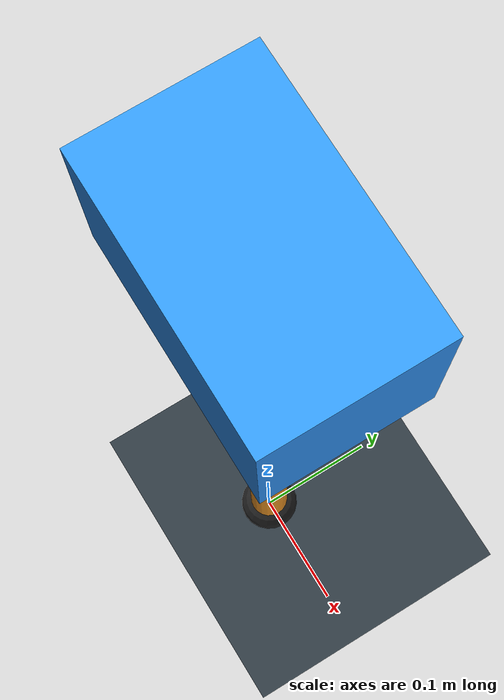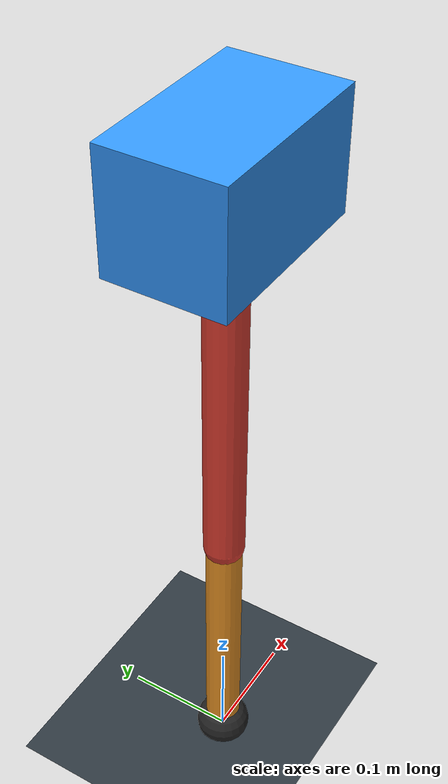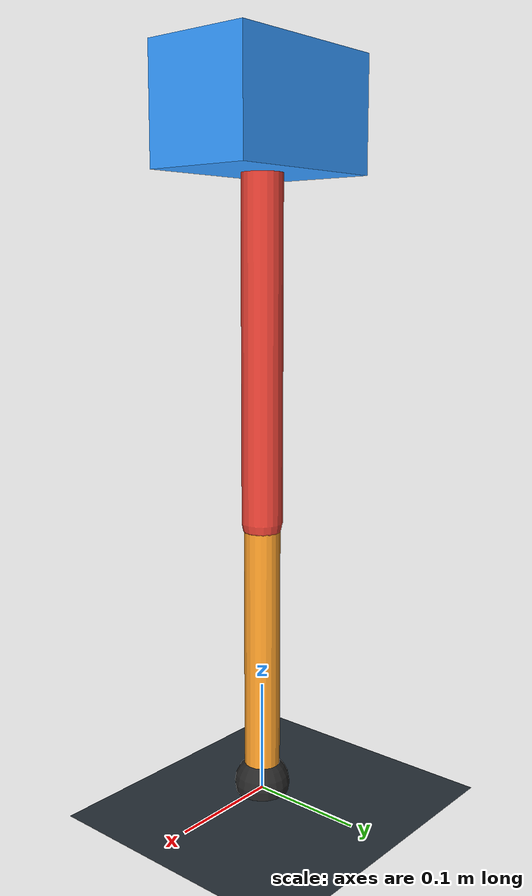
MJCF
<mujoco model="single_axis_two_bar">
  <compiler angle="radian" inertiafromgeom="true"/>
  <option timestep="0.001" integrator="implicitfast" gravity="0 0 -9.81"/>
  <default>
    <joint damping="0.08"/>
    <geom friction="1.2 0.01 0.0001" condim="3"/>
  </default>
  <worldbody>
    <geom name="floor" type="plane" size="5 5 0.1" rgba="0.18 0.22 0.25 1"/>
    <body name="carriage" pos="0 0 0.5995806037977877">
      <joint name="pole_slide" type="slide" axis="0 0 1"/>
      <geom name="payload" type="box" size="0.08 0.05 0.05" mass="2.593370618481793" rgba="0.2 0.6 1 1"/>
      <body name="thigh" pos="0 0 0">
        <joint name="hip" type="hinge" axis="0 1 0"/>
        <geom name="thigh_link" type="capsule" fromto="0 0 0 0 0 -0.3488688138061223" size="0.018" mass="0.24857363973151309" rgba="0.9 0.25 0.2 1"/>
        <body name="shank" pos="0 0 -0.3488688138061223">
          <joint name="knee" type="hinge" axis="0 1 0"/>
          <geom name="shank_link" type="capsule" fromto="0 0 0 0 0 -0.2434823241297413" size="0.016" mass="0.17348437327749383" rgba="0.95 0.6 0.15 1"/>
          <geom name="foot" type="sphere" pos="0 0 -0.2434823241297413" size="0.025" mass="0.03" rgba="0.15 0.15 0.15 1"/>
          <site name="toe" pos="0 0 -0.2434823241297413" size="0.008"/>
        </body>
      </body>
    </body>
  </worldbody>
  <actuator>
    <motor name="hip_motor" joint="hip" ctrlrange="-36.78159013084894 36.78159013084894"/>
    <motor name="knee_motor" joint="knee" ctrlrange="-80.46822113739884 80.46822113739884"/>
  </actuator>
</mujoco>
